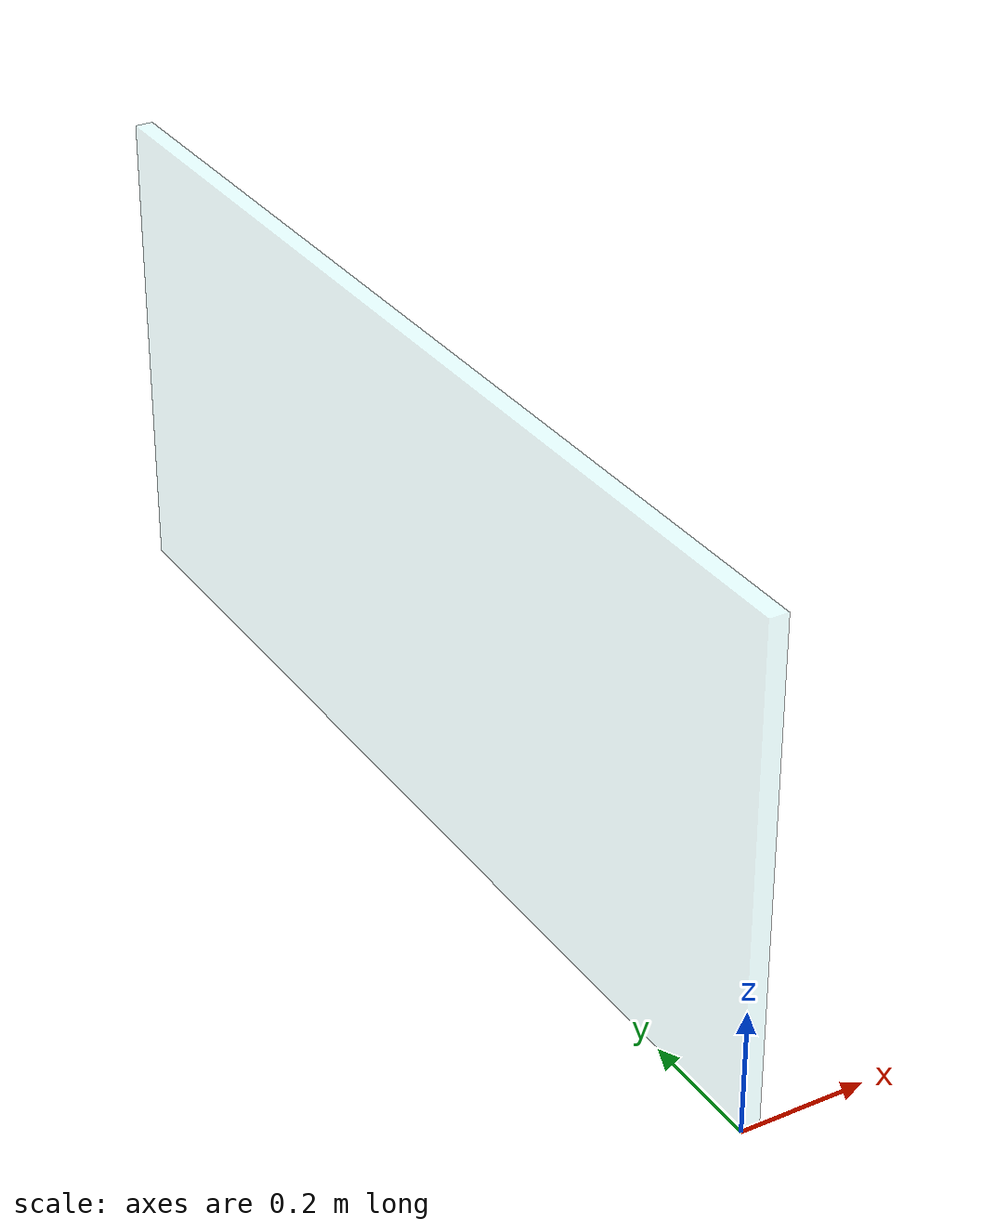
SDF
<?xml version='1.0'?>
<sdf version='1.6'>
  <model name='rai_window'>
    <link name='link_0'>
      <pose frame=''>0 0 0 1.57 -0 1.57</pose>
      <visual name='visual'>
        <pose frame=''>0 0 0 0 -0 0</pose>
        <geometry>
          <mesh>
            <uri>model://rai_window/meshes/rai_window.STL</uri>
            <scale>1 1 1</scale>
          </mesh>
        </geometry>
        <material>
          <lighting>1</lighting>
          <script>
            <uri>file://media/materials/scripts/gazebo.material</uri>
            <name>Gazebo/Grey</name>
          </script>
          <ambient>0.53 1 1 0.2</ambient>
          <diffuse>0.53 1 1 0.2</diffuse>
          <specular>0.01 0.01 0.01 1</specular>
          <emissive>0 0 0 1</emissive>
          <shader type='vertex'>
            <normal_map>__default__</normal_map>
          </shader>
        </material>
        <cast_shadows>1</cast_shadows>
        <transparency>0.5</transparency>
      </visual>
    </link>
    <static>1</static>
    <allow_auto_disable>1</allow_auto_disable>
  </model>
</sdf>
